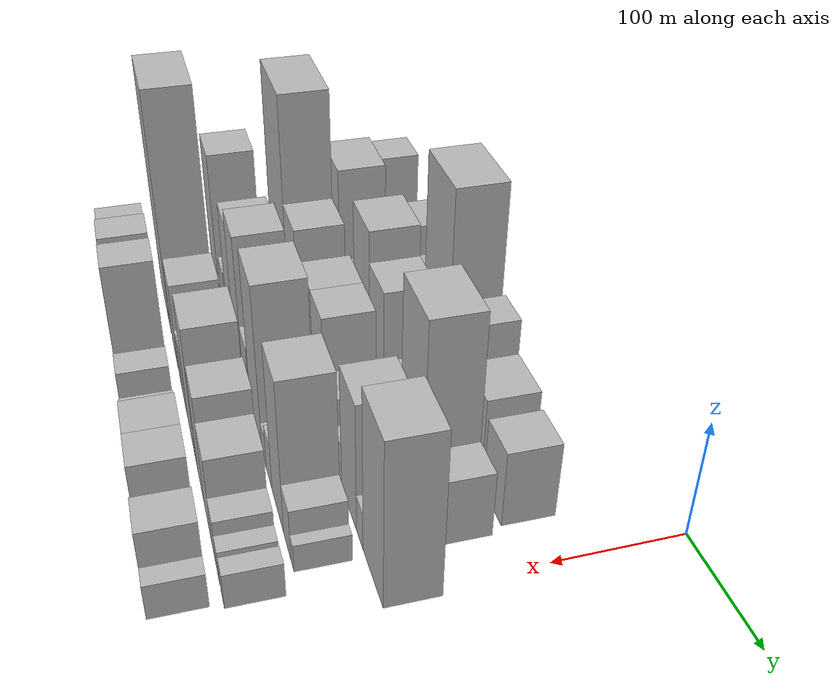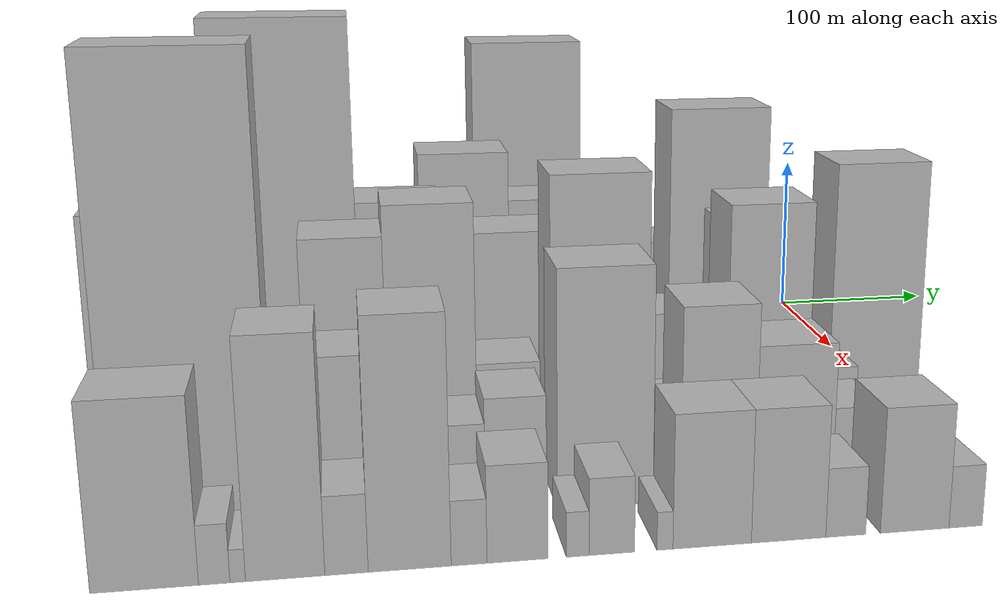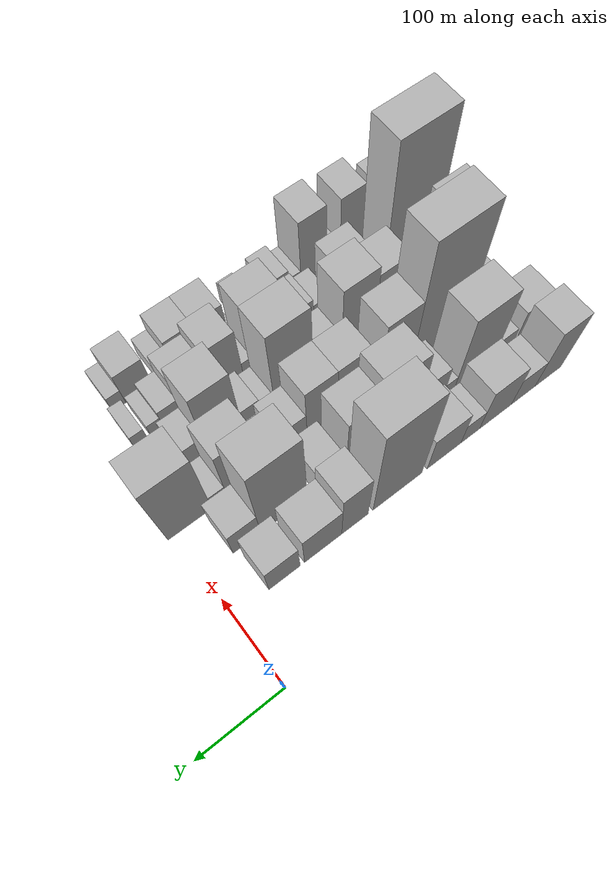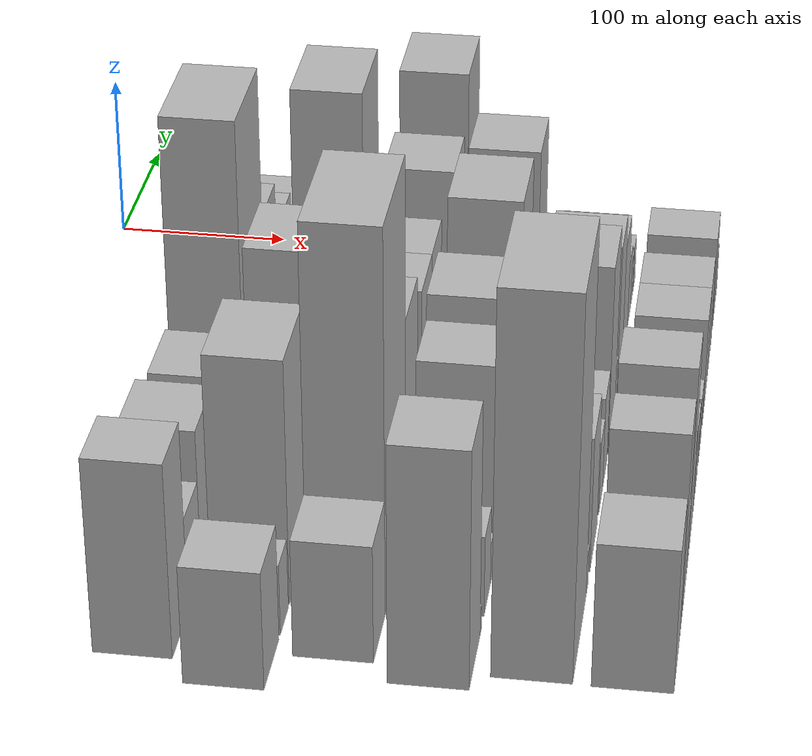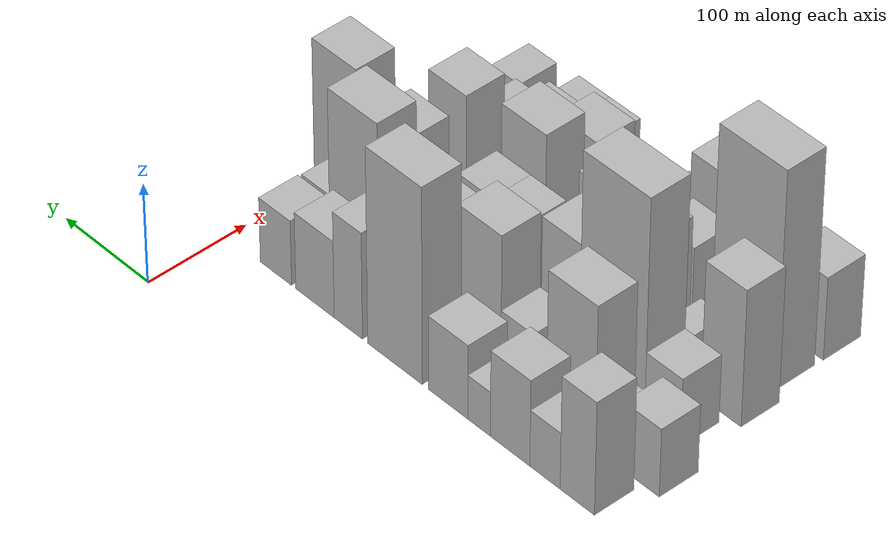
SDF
<sdf version="1.6">
 <world name="default">
  <model name="building_15">
   <static>1</static>
   <pose>100.0000 -401.0280 0 0.000000 0.000000 0.000000</pose>
   <link name="link">
    <pose>0 0 57.00 0 0 0</pose>
    <collision name="collision"><geometry><box><size>40.0000 37.3520 114.0000</size></box></geometry></collision>
    <visual name="visual">
     <cast_shadows>0</cast_shadows>
     <geometry><box><size>40.0000 37.3520 114.0000</size></box></geometry>
     <material>
      <script>
       <uri>model://HANNAS_wall/materials/scripts</uri>
       <uri>model://HANNAS_wall/materials/textures</uri>
       <name>vrc/HANNAS_wall</name>
      </script>
     </material>
    </visual>
   </link>
  </model>
  <model name="building_16">
   <static>1</static>
   <pose>100.0000 -365.7346 0 0.000000 0.000000 0.000000</pose>
   <link name="link">
    <pose>0 0 28.50 0 0 0</pose>
    <collision name="collision"><geometry><box><size>40.0000 33.2348 57.0000</size></box></geometry></collision>
    <visual name="visual">
     <cast_shadows>0</cast_shadows>
     <geometry><box><size>40.0000 33.2348 57.0000</size></box></geometry>
     <material>
      <script>
       <uri>model://HANNAS_wall/materials/scripts</uri>
       <uri>model://HANNAS_wall/materials/textures</uri>
       <name>vrc/HANNAS_wall</name>
      </script>
     </material>
    </visual>
   </link>
  </model>
  <model name="building_17">
   <static>1</static>
   <pose>100.0000 -327.2000 0 0.000000 0.000000 0.000000</pose>
   <link name="link">
    <pose>0 0 43.50 0 0 0</pose>
    <collision name="collision"><geometry><box><size>40.0000 43.8345 87.0000</size></box></geometry></collision>
    <visual name="visual">
     <cast_shadows>0</cast_shadows>
     <geometry><box><size>40.0000 43.8345 87.0000</size></box></geometry>
     <material>
      <script>
       <uri>model://HANNAS_wall/materials/scripts</uri>
       <uri>model://HANNAS_wall/materials/textures</uri>
       <name>vrc/HANNAS_wall</name>
      </script>
     </material>
    </visual>
   </link>
  </model>
  <model name="building_18">
   <static>1</static>
   <pose>100.0000 -292.6495 0 0.000000 0.000000 0.000000</pose>
   <link name="link">
    <pose>0 0 22.50 0 0 0</pose>
    <collision name="collision"><geometry><box><size>40.0000 25.2666 45.0000</size></box></geometry></collision>
    <visual name="visual">
     <cast_shadows>0</cast_shadows>
     <geometry><box><size>40.0000 25.2666 45.0000</size></box></geometry>
     <material>
      <script>
       <uri>model://HANNAS_wall/materials/scripts</uri>
       <uri>model://HANNAS_wall/materials/textures</uri>
       <name>vrc/HANNAS_wall</name>
      </script>
     </material>
    </visual>
   </link>
  </model>
  <model name="building_19">
   <static>1</static>
   <pose>100.0000 -257.8075 0 0.000000 0.000000 0.000000</pose>
   <link name="link">
    <pose>0 0 37.50 0 0 0</pose>
    <collision name="collision"><geometry><box><size>40.0000 44.4174 75.0000</size></box></geometry></collision>
    <visual name="visual">
     <cast_shadows>0</cast_shadows>
     <geometry><box><size>40.0000 44.4174 75.0000</size></box></geometry>
     <material>
      <script>
       <uri>model://HANNAS_wall/materials/scripts</uri>
       <uri>model://HANNAS_wall/materials/textures</uri>
       <name>vrc/HANNAS_wall</name>
      </script>
     </material>
    </visual>
   </link>
  </model>
  <model name="building_20">
   <static>1</static>
   <pose>100.0000 -197.3069 0 0.000000 0.000000 0.000000</pose>
   <link name="link">
    <pose>0 0 99.00 0 0 0</pose>
    <collision name="collision"><geometry><box><size>40.0000 62.5837 198.0000</size></box></geometry></collision>
    <visual name="visual">
     <cast_shadows>0</cast_shadows>
     <geometry><box><size>40.0000 62.5837 198.0000</size></box></geometry>
     <material>
      <script>
       <uri>model://HANNAS_wall/materials/scripts</uri>
       <uri>model://HANNAS_wall/materials/textures</uri>
       <name>vrc/HANNAS_wall</name>
      </script>
     </material>
    </visual>
   </link>
  </model>
  <model name="building_21">
   <static>1</static>
   <pose>100.0000 -143.6256 0 0.000000 0.000000 0.000000</pose>
   <link name="link">
    <pose>0 0 54.00 0 0 0</pose>
    <collision name="collision"><geometry><box><size>40.0000 32.7790 108.0000</size></box></geometry></collision>
    <visual name="visual">
     <cast_shadows>0</cast_shadows>
     <geometry><box><size>40.0000 32.7790 108.0000</size></box></geometry>
     <material>
      <script>
       <uri>model://HANNAS_wall/materials/scripts</uri>
       <uri>model://HANNAS_wall/materials/textures</uri>
       <name>vrc/HANNAS_wall</name>
      </script>
     </material>
    </visual>
   </link>
  </model>
  <model name="building_22">
   <static>1</static>
   <pose>100.0000 -104.7117 0 0.000000 0.000000 0.000000</pose>
   <link name="link">
    <pose>0 0 39.00 0 0 0</pose>
    <collision name="collision"><geometry><box><size>40.0000 45.0487 78.0000</size></box></geometry></collision>
    <visual name="visual">
     <cast_shadows>0</cast_shadows>
     <geometry><box><size>40.0000 45.0487 78.0000</size></box></geometry>
     <material>
      <script>
       <uri>model://HANNAS_wall/materials/scripts</uri>
       <uri>model://HANNAS_wall/materials/textures</uri>
       <name>vrc/HANNAS_wall</name>
      </script>
     </material>
    </visual>
   </link>
  </model>
  <model name="building_23">
   <static>1</static>
   <pose>100.0000 -58.7064 0 0.000000 0.000000 0.000000</pose>
   <link name="link">
    <pose>0 0 33.00 0 0 0</pose>
    <collision name="collision"><geometry><box><size>40.0000 36.9619 66.0000</size></box></geometry></collision>
    <visual name="visual">
     <cast_shadows>0</cast_shadows>
     <geometry><box><size>40.0000 36.9619 66.0000</size></box></geometry>
     <material>
      <script>
       <uri>model://HANNAS_wall/materials/scripts</uri>
       <uri>model://HANNAS_wall/materials/textures</uri>
       <name>vrc/HANNAS_wall</name>
      </script>
     </material>
    </visual>
   </link>
  </model>
  <model name="building_61">
   <static>1</static>
   <pose>149.0000 -417.6208 0 0.000000 0.000000 0.000000</pose>
   <link name="link">
    <pose>0 0 34.50 0 0 0</pose>
    <collision name="collision"><geometry><box><size>40.0000 40.3076 69.0000</size></box></geometry></collision>
    <visual name="visual">
     <cast_shadows>0</cast_shadows>
     <geometry><box><size>40.0000 40.3076 69.0000</size></box></geometry>
     <material>
      <script>
       <uri>model://HANNAS_wall/materials/scripts</uri>
       <uri>model://HANNAS_wall/materials/textures</uri>
       <name>vrc/HANNAS_wall</name>
      </script>
     </material>
    </visual>
   </link>
  </model>
  <model name="building_62">
   <static>1</static>
   <pose>149.0000 -382.2381 0 0.000000 0.000000 0.000000</pose>
   <link name="link">
    <pose>0 0 21.00 0 0 0</pose>
    <collision name="collision"><geometry><box><size>40.0000 22.4577 42.0000</size></box></geometry></collision>
    <visual name="visual">
     <cast_shadows>0</cast_shadows>
     <geometry><box><size>40.0000 22.4577 42.0000</size></box></geometry>
     <material>
      <script>
       <uri>model://HANNAS_wall/materials/scripts</uri>
       <uri>model://HANNAS_wall/materials/textures</uri>
       <name>vrc/HANNAS_wall</name>
      </script>
     </material>
    </visual>
   </link>
  </model>
  <model name="building_63">
   <static>1</static>
   <pose>149.0000 -341.0811 0 0.000000 0.000000 0.000000</pose>
   <link name="link">
    <pose>0 0 72.00 0 0 0</pose>
    <collision name="collision"><geometry><box><size>40.0000 53.8563 144.0000</size></box></geometry></collision>
    <visual name="visual">
     <cast_shadows>0</cast_shadows>
     <geometry><box><size>40.0000 53.8563 144.0000</size></box></geometry>
     <material>
      <script>
       <uri>model://HANNAS_wall/materials/scripts</uri>
       <uri>model://HANNAS_wall/materials/textures</uri>
       <name>vrc/HANNAS_wall</name>
      </script>
     </material>
    </visual>
   </link>
  </model>
  <model name="building_64">
   <static>1</static>
   <pose>149.0000 -306.5712 0 0.000000 0.000000 0.000000</pose>
   <link name="link">
    <pose>0 0 15.00 0 0 0</pose>
    <collision name="collision"><geometry><box><size>40.0000 15.1635 30.0000</size></box></geometry></collision>
    <visual name="visual">
     <cast_shadows>0</cast_shadows>
     <geometry><box><size>40.0000 15.1635 30.0000</size></box></geometry>
     <material>
      <script>
       <uri>model://HANNAS_wall/materials/scripts</uri>
       <uri>model://HANNAS_wall/materials/textures</uri>
       <name>vrc/HANNAS_wall</name>
      </script>
     </material>
    </visual>
   </link>
  </model>
  <model name="building_65">
   <static>1</static>
   <pose>149.0000 -281.0648 0 0.000000 0.000000 0.000000</pose>
   <link name="link">
    <pose>0 0 34.50 0 0 0</pose>
    <collision name="collision"><geometry><box><size>40.0000 35.8495 69.0000</size></box></geometry></collision>
    <visual name="visual">
     <cast_shadows>0</cast_shadows>
     <geometry><box><size>40.0000 35.8495 69.0000</size></box></geometry>
     <material>
      <script>
       <uri>model://HANNAS_wall/materials/scripts</uri>
       <uri>model://HANNAS_wall/materials/textures</uri>
       <name>vrc/HANNAS_wall</name>
      </script>
     </material>
    </visual>
   </link>
  </model>
  <model name="building_66">
   <static>1</static>
   <pose>149.0000 -238.6865 0 0.000000 0.000000 0.000000</pose>
   <link name="link">
    <pose>0 0 72.00 0 0 0</pose>
    <collision name="collision"><geometry><box><size>40.0000 48.9071 144.0000</size></box></geometry></collision>
    <visual name="visual">
     <cast_shadows>0</cast_shadows>
     <geometry><box><size>40.0000 48.9071 144.0000</size></box></geometry>
     <material>
      <script>
       <uri>model://HANNAS_wall/materials/scripts</uri>
       <uri>model://HANNAS_wall/materials/textures</uri>
       <name>vrc/HANNAS_wall</name>
      </script>
     </material>
    </visual>
   </link>
  </model>
  <model name="building_67">
   <static>1</static>
   <pose>149.0000 -192.8551 0 0.000000 0.000000 0.000000</pose>
   <link name="link">
    <pose>0 0 58.50 0 0 0</pose>
    <collision name="collision"><geometry><box><size>40.0000 42.7557 117.0000</size></box></geometry></collision>
    <visual name="visual">
     <cast_shadows>0</cast_shadows>
     <geometry><box><size>40.0000 42.7557 117.0000</size></box></geometry>
     <material>
      <script>
       <uri>model://HANNAS_wall/materials/scripts</uri>
       <uri>model://HANNAS_wall/materials/textures</uri>
       <name>vrc/HANNAS_wall</name>
      </script>
     </material>
    </visual>
   </link>
  </model>
  <model name="building_68">
   <static>1</static>
   <pose>149.0000 -149.8203 0 0.000000 0.000000 0.000000</pose>
   <link name="link">
    <pose>0 0 30.00 0 0 0</pose>
    <collision name="collision"><geometry><box><size>40.0000 33.3138 60.0000</size></box></geometry></collision>
    <visual name="visual">
     <cast_shadows>0</cast_shadows>
     <geometry><box><size>40.0000 33.3138 60.0000</size></box></geometry>
     <material>
      <script>
       <uri>model://HANNAS_wall/materials/scripts</uri>
       <uri>model://HANNAS_wall/materials/textures</uri>
       <name>vrc/HANNAS_wall</name>
      </script>
     </material>
    </visual>
   </link>
  </model>
  <model name="building_69">
   <static>1</static>
   <pose>149.0000 -94.7857 0 0.000000 0.000000 0.000000</pose>
   <link name="link">
    <pose>0 0 82.50 0 0 0</pose>
    <collision name="collision"><geometry><box><size>40.0000 56.7555 165.0000</size></box></geometry></collision>
    <visual name="visual">
     <cast_shadows>0</cast_shadows>
     <geometry><box><size>40.0000 56.7555 165.0000</size></box></geometry>
     <material>
      <script>
       <uri>model://HANNAS_wall/materials/scripts</uri>
       <uri>model://HANNAS_wall/materials/textures</uri>
       <name>vrc/HANNAS_wall</name>
      </script>
     </material>
    </visual>
   </link>
  </model>
  <model name="building_70">
   <static>1</static>
   <pose>149.0000 -50.0288 0 0.000000 0.000000 0.000000</pose>
   <link name="link">
    <pose>0 0 28.50 0 0 0</pose>
    <collision name="collision"><geometry><box><size>40.0000 32.7581 57.0000</size></box></geometry></collision>
    <visual name="visual">
     <cast_shadows>0</cast_shadows>
     <geometry><box><size>40.0000 32.7581 57.0000</size></box></geometry>
     <material>
      <script>
       <uri>model://HANNAS_wall/materials/scripts</uri>
       <uri>model://HANNAS_wall/materials/textures</uri>
       <name>vrc/HANNAS_wall</name>
      </script>
     </material>
    </visual>
   </link>
  </model>
  <model name="building_108">
   <static>1</static>
   <pose>198.0000 -389.7115 0 0.000000 0.000000 0.000000</pose>
   <link name="link">
    <pose>0 0 34.50 0 0 0</pose>
    <collision name="collision"><geometry><box><size>40.0000 39.2345 69.0000</size></box></geometry></collision>
    <visual name="visual">
     <cast_shadows>0</cast_shadows>
     <geometry><box><size>40.0000 39.2345 69.0000</size></box></geometry>
     <material>
      <script>
       <uri>model://HANNAS_wall/materials/scripts</uri>
       <uri>model://HANNAS_wall/materials/textures</uri>
       <name>vrc/HANNAS_wall</name>
      </script>
     </material>
    </visual>
   </link>
  </model>
  <model name="building_109">
   <static>1</static>
   <pose>198.0000 -333.9426 0 0.000000 0.000000 0.000000</pose>
   <link name="link">
    <pose>0 0 111.00 0 0 0</pose>
    <collision name="collision"><geometry><box><size>40.0000 72.3033 222.0000</size></box></geometry></collision>
    <visual name="visual">
     <cast_shadows>0</cast_shadows>
     <geometry><box><size>40.0000 72.3033 222.0000</size></box></geometry>
     <material>
      <script>
       <uri>model://HANNAS_wall/materials/scripts</uri>
       <uri>model://HANNAS_wall/materials/textures</uri>
       <name>vrc/HANNAS_wall</name>
      </script>
     </material>
    </visual>
   </link>
  </model>
  <model name="building_110">
   <static>1</static>
   <pose>198.0000 -276.2943 0 0.000000 0.000000 0.000000</pose>
   <link name="link">
    <pose>0 0 64.50 0 0 0</pose>
    <collision name="collision"><geometry><box><size>40.0000 42.9933 129.0000</size></box></geometry></collision>
    <visual name="visual">
     <cast_shadows>0</cast_shadows>
     <geometry><box><size>40.0000 42.9933 129.0000</size></box></geometry>
     <material>
      <script>
       <uri>model://HANNAS_wall/materials/scripts</uri>
       <uri>model://HANNAS_wall/materials/textures</uri>
       <name>vrc/HANNAS_wall</name>
      </script>
     </material>
    </visual>
   </link>
  </model>
  <model name="building_111">
   <static>1</static>
   <pose>198.0000 -241.5619 0 0.000000 0.000000 0.000000</pose>
   <link name="link">
    <pose>0 0 7.50 0 0 0</pose>
    <collision name="collision"><geometry><box><size>40.0000 6.4716 15.0000</size></box></geometry></collision>
    <visual name="visual">
     <cast_shadows>0</cast_shadows>
     <geometry><box><size>40.0000 6.4716 15.0000</size></box></geometry>
     <material>
      <script>
       <uri>model://HANNAS_wall/materials/scripts</uri>
       <uri>model://HANNAS_wall/materials/textures</uri>
       <name>vrc/HANNAS_wall</name>
      </script>
     </material>
    </visual>
   </link>
  </model>
  <model name="building_112">
   <static>1</static>
   <pose>198.0000 -218.4153 0 0.000000 0.000000 0.000000</pose>
   <link name="link">
    <pose>0 0 55.50 0 0 0</pose>
    <collision name="collision"><geometry><box><size>40.0000 39.8216 111.0000</size></box></geometry></collision>
    <visual name="visual">
     <cast_shadows>0</cast_shadows>
     <geometry><box><size>40.0000 39.8216 111.0000</size></box></geometry>
     <material>
      <script>
       <uri>model://HANNAS_wall/materials/scripts</uri>
       <uri>model://HANNAS_wall/materials/textures</uri>
       <name>vrc/HANNAS_wall</name>
      </script>
     </material>
    </visual>
   </link>
  </model>
  <model name="building_113">
   <static>1</static>
   <pose>198.0000 -179.4373 0 0.000000 0.000000 0.000000</pose>
   <link name="link">
    <pose>0 0 55.50 0 0 0</pose>
    <collision name="collision"><geometry><box><size>40.0000 38.1344 111.0000</size></box></geometry></collision>
    <visual name="visual">
     <cast_shadows>0</cast_shadows>
     <geometry><box><size>40.0000 38.1344 111.0000</size></box></geometry>
     <material>
      <script>
       <uri>model://HANNAS_wall/materials/scripts</uri>
       <uri>model://HANNAS_wall/materials/textures</uri>
       <name>vrc/HANNAS_wall</name>
      </script>
     </material>
    </visual>
   </link>
  </model>
  <model name="building_114">
   <static>1</static>
   <pose>198.0000 -144.1274 0 0.000000 0.000000 0.000000</pose>
   <link name="link">
    <pose>0 0 31.50 0 0 0</pose>
    <collision name="collision"><geometry><box><size>40.0000 32.4854 63.0000</size></box></geometry></collision>
    <visual name="visual">
     <cast_shadows>0</cast_shadows>
     <geometry><box><size>40.0000 32.4854 63.0000</size></box></geometry>
     <material>
      <script>
       <uri>model://HANNAS_wall/materials/scripts</uri>
       <uri>model://HANNAS_wall/materials/textures</uri>
       <name>vrc/HANNAS_wall</name>
      </script>
     </material>
    </visual>
   </link>
  </model>
  <model name="building_115">
   <static>1</static>
   <pose>198.0000 -116.7736 0 0.000000 0.000000 0.000000</pose>
   <link name="link">
    <pose>0 0 19.50 0 0 0</pose>
    <collision name="collision"><geometry><box><size>40.0000 22.2222 39.0000</size></box></geometry></collision>
    <visual name="visual">
     <cast_shadows>0</cast_shadows>
     <geometry><box><size>40.0000 22.2222 39.0000</size></box></geometry>
     <material>
      <script>
       <uri>model://HANNAS_wall/materials/scripts</uri>
       <uri>model://HANNAS_wall/materials/textures</uri>
       <name>vrc/HANNAS_wall</name>
      </script>
     </material>
    </visual>
   </link>
  </model>
  <model name="building_116">
   <static>1</static>
   <pose>198.0000 -83.6625 0 0.000000 0.000000 0.000000</pose>
   <link name="link">
    <pose>0 0 55.50 0 0 0</pose>
    <collision name="collision"><geometry><box><size>40.0000 44.0001 111.0000</size></box></geometry></collision>
    <visual name="visual">
     <cast_shadows>0</cast_shadows>
     <geometry><box><size>40.0000 44.0001 111.0000</size></box></geometry>
     <material>
      <script>
       <uri>model://HANNAS_wall/materials/scripts</uri>
       <uri>model://HANNAS_wall/materials/textures</uri>
       <name>vrc/HANNAS_wall</name>
      </script>
     </material>
    </visual>
   </link>
  </model>
  <model name="building_117">
   <static>1</static>
   <pose>198.0000 -52.4876 0 0.000000 0.000000 0.000000</pose>
   <link name="link">
    <pose>0 0 16.50 0 0 0</pose>
    <collision name="collision"><geometry><box><size>40.0000 18.3497 33.0000</size></box></geometry></collision>
    <visual name="visual">
     <cast_shadows>0</cast_shadows>
     <geometry><box><size>40.0000 18.3497 33.0000</size></box></geometry>
     <material>
      <script>
       <uri>model://HANNAS_wall/materials/scripts</uri>
       <uri>model://HANNAS_wall/materials/textures</uri>
       <name>vrc/HANNAS_wall</name>
      </script>
     </material>
    </visual>
   </link>
  </model>
  <model name="building_118">
   <static>1</static>
   <pose>198.0000 -17.4061 0 0.000000 0.000000 0.000000</pose>
   <link name="link">
    <pose>0 0 70.50 0 0 0</pose>
    <collision name="collision"><geometry><box><size>40.0000 51.8133 141.0000</size></box></geometry></collision>
    <visual name="visual">
     <cast_shadows>0</cast_shadows>
     <geometry><box><size>40.0000 51.8133 141.0000</size></box></geometry>
     <material>
      <script>
       <uri>model://HANNAS_wall/materials/scripts</uri>
       <uri>model://HANNAS_wall/materials/textures</uri>
       <name>vrc/HANNAS_wall</name>
      </script>
     </material>
    </visual>
   </link>
  </model>
  <model name="building_153">
   <static>1</static>
   <pose>247.0000 -402.2108 0 0.000000 0.000000 0.000000</pose>
   <link name="link">
    <pose>0 0 69.00 0 0 0</pose>
    <collision name="collision"><geometry><box><size>40.0000 43.5881 138.0000</size></box></geometry></collision>
    <visual name="visual">
     <cast_shadows>0</cast_shadows>
     <geometry><box><size>40.0000 43.5881 138.0000</size></box></geometry>
     <material>
      <script>
       <uri>model://HANNAS_wall/materials/scripts</uri>
       <uri>model://HANNAS_wall/materials/textures</uri>
       <name>vrc/HANNAS_wall</name>
      </script>
     </material>
    </visual>
   </link>
  </model>
  <model name="building_154">
   <static>1</static>
   <pose>247.0000 -377.2180 0 0.000000 0.000000 0.000000</pose>
   <link name="link">
    <pose>0 0 7.50 0 0 0</pose>
    <collision name="collision"><geometry><box><size>40.0000 6.3976 15.0000</size></box></geometry></collision>
    <visual name="visual">
     <cast_shadows>0</cast_shadows>
     <geometry><box><size>40.0000 6.3976 15.0000</size></box></geometry>
     <material>
      <script>
       <uri>model://HANNAS_wall/materials/scripts</uri>
       <uri>model://HANNAS_wall/materials/textures</uri>
       <name>vrc/HANNAS_wall</name>
      </script>
     </material>
    </visual>
   </link>
  </model>
  <model name="building_155">
   <static>1</static>
   <pose>247.0000 -350.5847 0 0.000000 0.000000 0.000000</pose>
   <link name="link">
    <pose>0 0 24.00 0 0 0</pose>
    <collision name="collision"><geometry><box><size>40.0000 26.8688 48.0000</size></box></geometry></collision>
    <visual name="visual">
     <cast_shadows>0</cast_shadows>
     <geometry><box><size>40.0000 26.8688 48.0000</size></box></geometry>
     <material>
      <script>
       <uri>model://HANNAS_wall/materials/scripts</uri>
       <uri>model://HANNAS_wall/materials/textures</uri>
       <name>vrc/HANNAS_wall</name>
      </script>
     </material>
    </visual>
   </link>
  </model>
  <model name="building_156">
   <static>1</static>
   <pose>247.0000 -331.2858 0 0.000000 0.000000 0.000000</pose>
   <link name="link">
    <pose>0 0 12.00 0 0 0</pose>
    <collision name="collision"><geometry><box><size>40.0000 11.7291 24.0000</size></box></geometry></collision>
    <visual name="visual">
     <cast_shadows>0</cast_shadows>
     <geometry><box><size>40.0000 11.7291 24.0000</size></box></geometry>
     <material>
      <script>
       <uri>model://HANNAS_wall/materials/scripts</uri>
       <uri>model://HANNAS_wall/materials/textures</uri>
       <name>vrc/HANNAS_wall</name>
      </script>
     </material>
    </visual>
   </link>
  </model>
  <model name="building_157">
   <static>1</static>
   <pose>247.0000 -305.7315 0 0.000000 0.000000 0.000000</pose>
   <link name="link">
    <pose>0 0 61.50 0 0 0</pose>
    <collision name="collision"><geometry><box><size>40.0000 39.3795 123.0000</size></box></geometry></collision>
    <visual name="visual">
     <cast_shadows>0</cast_shadows>
     <geometry><box><size>40.0000 39.3795 123.0000</size></box></geometry>
     <material>
      <script>
       <uri>model://HANNAS_wall/materials/scripts</uri>
       <uri>model://HANNAS_wall/materials/textures</uri>
       <name>vrc/HANNAS_wall</name>
      </script>
     </material>
    </visual>
   </link>
  </model>
  <model name="building_158">
   <static>1</static>
   <pose>247.0000 -264.2725 0 0.000000 0.000000 0.000000</pose>
   <link name="link">
    <pose>0 0 69.00 0 0 0</pose>
    <collision name="collision"><geometry><box><size>40.0000 43.5385 138.0000</size></box></geometry></collision>
    <visual name="visual">
     <cast_shadows>0</cast_shadows>
     <geometry><box><size>40.0000 43.5385 138.0000</size></box></geometry>
     <material>
      <script>
       <uri>model://HANNAS_wall/materials/scripts</uri>
       <uri>model://HANNAS_wall/materials/textures</uri>
       <name>vrc/HANNAS_wall</name>
      </script>
     </material>
    </visual>
   </link>
  </model>
  <model name="building_159">
   <static>1</static>
   <pose>247.0000 -226.6623 0 0.000000 0.000000 0.000000</pose>
   <link name="link">
    <pose>0 0 28.50 0 0 0</pose>
    <collision name="collision"><geometry><box><size>40.0000 31.6820 57.0000</size></box></geometry></collision>
    <visual name="visual">
     <cast_shadows>0</cast_shadows>
     <geometry><box><size>40.0000 31.6820 57.0000</size></box></geometry>
     <material>
      <script>
       <uri>model://HANNAS_wall/materials/scripts</uri>
       <uri>model://HANNAS_wall/materials/textures</uri>
       <name>vrc/HANNAS_wall</name>
      </script>
     </material>
    </visual>
   </link>
  </model>
  <model name="building_160">
   <static>1</static>
   <pose>247.0000 -180.8012 0 0.000000 0.000000 0.000000</pose>
   <link name="link">
    <pose>0 0 75.00 0 0 0</pose>
    <collision name="collision"><geometry><box><size>40.0000 50.0404 150.0000</size></box></geometry></collision>
    <visual name="visual">
     <cast_shadows>0</cast_shadows>
     <geometry><box><size>40.0000 50.0404 150.0000</size></box></geometry>
     <material>
      <script>
       <uri>model://HANNAS_wall/materials/scripts</uri>
       <uri>model://HANNAS_wall/materials/textures</uri>
       <name>vrc/HANNAS_wall</name>
      </script>
     </material>
    </visual>
   </link>
  </model>
  <model name="building_161">
   <static>1</static>
   <pose>247.0000 -147.1944 0 0.000000 0.000000 0.000000</pose>
   <link name="link">
    <pose>0 0 15.00 0 0 0</pose>
    <collision name="collision"><geometry><box><size>40.0000 17.1731 30.0000</size></box></geometry></collision>
    <visual name="visual">
     <cast_shadows>0</cast_shadows>
     <geometry><box><size>40.0000 17.1731 30.0000</size></box></geometry>
     <material>
      <script>
       <uri>model://HANNAS_wall/materials/scripts</uri>
       <uri>model://HANNAS_wall/materials/textures</uri>
       <name>vrc/HANNAS_wall</name>
      </script>
     </material>
    </visual>
   </link>
  </model>
  <model name="building_162">
   <static>1</static>
   <pose>247.0000 -127.0095 0 0.000000 0.000000 0.000000</pose>
   <link name="link">
    <pose>0 0 21.00 0 0 0</pose>
    <collision name="collision"><geometry><box><size>40.0000 23.1966 42.0000</size></box></geometry></collision>
    <visual name="visual">
     <cast_shadows>0</cast_shadows>
     <geometry><box><size>40.0000 23.1966 42.0000</size></box></geometry>
     <material>
      <script>
       <uri>model://HANNAS_wall/materials/scripts</uri>
       <uri>model://HANNAS_wall/materials/textures</uri>
       <name>vrc/HANNAS_wall</name>
      </script>
     </material>
    </visual>
   </link>
  </model>
  <model name="building_163">
   <static>1</static>
   <pose>247.0000 -93.7710 0 0.000000 0.000000 0.000000</pose>
   <link name="link">
    <pose>0 0 66.00 0 0 0</pose>
    <collision name="collision"><geometry><box><size>40.0000 43.2805 132.0000</size></box></geometry></collision>
    <visual name="visual">
     <cast_shadows>0</cast_shadows>
     <geometry><box><size>40.0000 43.2805 132.0000</size></box></geometry>
     <material>
      <script>
       <uri>model://HANNAS_wall/materials/scripts</uri>
       <uri>model://HANNAS_wall/materials/textures</uri>
       <name>vrc/HANNAS_wall</name>
      </script>
     </material>
    </visual>
   </link>
  </model>
  <model name="building_164">
   <static>1</static>
   <pose>247.0000 -59.1571 0 0.000000 0.000000 0.000000</pose>
   <link name="link">
    <pose>0 0 22.50 0 0 0</pose>
    <collision name="collision"><geometry><box><size>40.0000 25.9474 45.0000</size></box></geometry></collision>
    <visual name="visual">
     <cast_shadows>0</cast_shadows>
     <geometry><box><size>40.0000 25.9474 45.0000</size></box></geometry>
     <material>
      <script>
       <uri>model://HANNAS_wall/materials/scripts</uri>
       <uri>model://HANNAS_wall/materials/textures</uri>
       <name>vrc/HANNAS_wall</name>
      </script>
     </material>
    </visual>
   </link>
  </model>
  <model name="building_165">
   <static>1</static>
   <pose>247.0000 -41.0581 0 0.000000 0.000000 0.000000</pose>
   <link name="link">
    <pose>0 0 12.00 0 0 0</pose>
    <collision name="collision"><geometry><box><size>40.0000 10.2505 24.0000</size></box></geometry></collision>
    <visual name="visual">
     <cast_shadows>0</cast_shadows>
     <geometry><box><size>40.0000 10.2505 24.0000</size></box></geometry>
     <material>
      <script>
       <uri>model://HANNAS_wall/materials/scripts</uri>
       <uri>model://HANNAS_wall/materials/textures</uri>
       <name>vrc/HANNAS_wall</name>
      </script>
     </material>
    </visual>
   </link>
  </model>
  <model name="building_199">
   <static>1</static>
   <pose>296.0000 -376.3664 0 0.000000 0.000000 0.000000</pose>
   <link name="link">
    <pose>0 0 109.50 0 0 0</pose>
    <collision name="collision"><geometry><box><size>40.0000 71.8689 219.0000</size></box></geometry></collision>
    <visual name="visual">
     <cast_shadows>0</cast_shadows>
     <geometry><box><size>40.0000 71.8689 219.0000</size></box></geometry>
     <material>
      <script>
       <uri>model://HANNAS_wall/materials/scripts</uri>
       <uri>model://HANNAS_wall/materials/textures</uri>
       <name>vrc/HANNAS_wall</name>
      </script>
     </material>
    </visual>
   </link>
  </model>
  <model name="building_200">
   <static>1</static>
   <pose>296.0000 -334.6474 0 0.000000 0.000000 0.000000</pose>
   <link name="link">
    <pose>0 0 12.00 0 0 0</pose>
    <collision name="collision"><geometry><box><size>40.0000 11.5691 24.0000</size></box></geometry></collision>
    <visual name="visual">
     <cast_shadows>0</cast_shadows>
     <geometry><box><size>40.0000 11.5691 24.0000</size></box></geometry>
     <material>
      <script>
       <uri>model://HANNAS_wall/materials/scripts</uri>
       <uri>model://HANNAS_wall/materials/textures</uri>
       <name>vrc/HANNAS_wall</name>
      </script>
     </material>
    </visual>
   </link>
  </model>
  <model name="building_201">
   <static>1</static>
   <pose>296.0000 -297.7083 0 0.000000 0.000000 0.000000</pose>
   <link name="link">
    <pose>0 0 40.50 0 0 0</pose>
    <collision name="collision"><geometry><box><size>40.0000 42.3090 81.0000</size></box></geometry></collision>
    <visual name="visual">
     <cast_shadows>0</cast_shadows>
     <geometry><box><size>40.0000 42.3090 81.0000</size></box></geometry>
     <material>
      <script>
       <uri>model://HANNAS_wall/materials/scripts</uri>
       <uri>model://HANNAS_wall/materials/textures</uri>
       <name>vrc/HANNAS_wall</name>
      </script>
     </material>
    </visual>
   </link>
  </model>
  <model name="building_202">
   <static>1</static>
   <pose>296.0000 -255.6815 0 0.000000 0.000000 0.000000</pose>
   <link name="link">
    <pose>0 0 22.50 0 0 0</pose>
    <collision name="collision"><geometry><box><size>40.0000 23.7448 45.0000</size></box></geometry></collision>
    <visual name="visual">
     <cast_shadows>0</cast_shadows>
     <geometry><box><size>40.0000 23.7448 45.0000</size></box></geometry>
     <material>
      <script>
       <uri>model://HANNAS_wall/materials/scripts</uri>
       <uri>model://HANNAS_wall/materials/textures</uri>
       <name>vrc/HANNAS_wall</name>
      </script>
     </material>
    </visual>
   </link>
  </model>
  <model name="building_203">
   <static>1</static>
   <pose>296.0000 -229.4340 0 0.000000 0.000000 0.000000</pose>
   <link name="link">
    <pose>0 0 28.50 0 0 0</pose>
    <collision name="collision"><geometry><box><size>40.0000 28.7501 57.0000</size></box></geometry></collision>
    <visual name="visual">
     <cast_shadows>0</cast_shadows>
     <geometry><box><size>40.0000 28.7501 57.0000</size></box></geometry>
     <material>
      <script>
       <uri>model://HANNAS_wall/materials/scripts</uri>
       <uri>model://HANNAS_wall/materials/textures</uri>
       <name>vrc/HANNAS_wall</name>
      </script>
     </material>
    </visual>
   </link>
  </model>
  <model name="building_204">
   <static>1</static>
   <pose>296.0000 -187.1168 0 0.000000 0.000000 0.000000</pose>
   <link name="link">
    <pose>0 0 58.50 0 0 0</pose>
    <collision name="collision"><geometry><box><size>40.0000 45.8844 117.0000</size></box></geometry></collision>
    <visual name="visual">
     <cast_shadows>0</cast_shadows>
     <geometry><box><size>40.0000 45.8844 117.0000</size></box></geometry>
     <material>
      <script>
       <uri>model://HANNAS_wall/materials/scripts</uri>
       <uri>model://HANNAS_wall/materials/textures</uri>
       <name>vrc/HANNAS_wall</name>
      </script>
     </material>
    </visual>
   </link>
  </model>
  <model name="building_205">
   <static>1</static>
   <pose>296.0000 -157.5001 0 0.000000 0.000000 0.000000</pose>
   <link name="link">
    <pose>0 0 13.50 0 0 0</pose>
    <collision name="collision"><geometry><box><size>40.0000 13.3490 27.0000</size></box></geometry></collision>
    <visual name="visual">
     <cast_shadows>0</cast_shadows>
     <geometry><box><size>40.0000 13.3490 27.0000</size></box></geometry>
     <material>
      <script>
       <uri>model://HANNAS_wall/materials/scripts</uri>
       <uri>model://HANNAS_wall/materials/textures</uri>
       <name>vrc/HANNAS_wall</name>
      </script>
     </material>
    </visual>
   </link>
  </model>
  <model name="building_206">
   <static>1</static>
   <pose>296.0000 -132.3922 0 0.000000 0.000000 0.000000</pose>
   <link name="link">
    <pose>0 0 48.00 0 0 0</pose>
    <collision name="collision"><geometry><box><size>40.0000 36.8669 96.0000</size></box></geometry></collision>
    <visual name="visual">
     <cast_shadows>0</cast_shadows>
     <geometry><box><size>40.0000 36.8669 96.0000</size></box></geometry>
     <material>
      <script>
       <uri>model://HANNAS_wall/materials/scripts</uri>
       <uri>model://HANNAS_wall/materials/textures</uri>
       <name>vrc/HANNAS_wall</name>
      </script>
     </material>
    </visual>
   </link>
  </model>
  <model name="building_207">
   <static>1</static>
   <pose>296.0000 -94.6415 0 0.000000 0.000000 0.000000</pose>
   <link name="link">
    <pose>0 0 37.50 0 0 0</pose>
    <collision name="collision"><geometry><box><size>40.0000 38.6345 75.0000</size></box></geometry></collision>
    <visual name="visual">
     <cast_shadows>0</cast_shadows>
     <geometry><box><size>40.0000 38.6345 75.0000</size></box></geometry>
     <material>
      <script>
       <uri>model://HANNAS_wall/materials/scripts</uri>
       <uri>model://HANNAS_wall/materials/textures</uri>
       <name>vrc/HANNAS_wall</name>
      </script>
     </material>
    </visual>
   </link>
  </model>
  <model name="building_208">
   <static>1</static>
   <pose>296.0000 -63.8032 0 0.000000 0.000000 0.000000</pose>
   <link name="link">
    <pose>0 0 21.00 0 0 0</pose>
    <collision name="collision"><geometry><box><size>40.0000 23.0421 42.0000</size></box></geometry></collision>
    <visual name="visual">
     <cast_shadows>0</cast_shadows>
     <geometry><box><size>40.0000 23.0421 42.0000</size></box></geometry>
     <material>
      <script>
       <uri>model://HANNAS_wall/materials/scripts</uri>
       <uri>model://HANNAS_wall/materials/textures</uri>
       <name>vrc/HANNAS_wall</name>
      </script>
     </material>
    </visual>
   </link>
  </model>
  <model name="building_209">
   <static>1</static>
   <pose>296.0000 -44.7045 0 0.000000 0.000000 0.000000</pose>
   <link name="link">
    <pose>0 0 15.00 0 0 0</pose>
    <collision name="collision"><geometry><box><size>40.0000 15.1554 30.0000</size></box></geometry></collision>
    <visual name="visual">
     <cast_shadows>0</cast_shadows>
     <geometry><box><size>40.0000 15.1554 30.0000</size></box></geometry>
     <material>
      <script>
       <uri>model://HANNAS_wall/materials/scripts</uri>
       <uri>model://HANNAS_wall/materials/textures</uri>
       <name>vrc/HANNAS_wall</name>
      </script>
     </material>
    </visual>
   </link>
  </model>
  <model name="building_210">
   <static>1</static>
   <pose>296.0000 -25.1783 0 0.000000 0.000000 0.000000</pose>
   <link name="link">
    <pose>0 0 15.00 0 0 0</pose>
    <collision name="collision"><geometry><box><size>40.0000 15.8970 30.0000</size></box></geometry></collision>
    <visual name="visual">
     <cast_shadows>0</cast_shadows>
     <geometry><box><size>40.0000 15.8970 30.0000</size></box></geometry>
     <material>
      <script>
       <uri>model://HANNAS_wall/materials/scripts</uri>
       <uri>model://HANNAS_wall/materials/textures</uri>
       <name>vrc/HANNAS_wall</name>
      </script>
     </material>
    </visual>
   </link>
  </model>
  <model name="building_248">
   <static>1</static>
   <pose>345.0000 -391.0158 0 0.000000 0.000000 0.000000</pose>
   <link name="link">
    <pose>0 0 42.00 0 0 0</pose>
    <collision name="collision"><geometry><box><size>40.0000 43.6427 84.0000</size></box></geometry></collision>
    <visual name="visual">
     <cast_shadows>0</cast_shadows>
     <geometry><box><size>40.0000 43.6427 84.0000</size></box></geometry>
     <material>
      <script>
       <uri>model://HANNAS_wall/materials/scripts</uri>
       <uri>model://HANNAS_wall/materials/textures</uri>
       <name>vrc/HANNAS_wall</name>
      </script>
     </material>
    </visual>
   </link>
  </model>
  <model name="building_249">
   <static>1</static>
   <pose>345.0000 -362.7882 0 0.000000 0.000000 0.000000</pose>
   <link name="link">
    <pose>0 0 13.50 0 0 0</pose>
    <collision name="collision"><geometry><box><size>40.0000 12.8127 27.0000</size></box></geometry></collision>
    <visual name="visual">
     <cast_shadows>0</cast_shadows>
     <geometry><box><size>40.0000 12.8127 27.0000</size></box></geometry>
     <material>
      <script>
       <uri>model://HANNAS_wall/materials/scripts</uri>
       <uri>model://HANNAS_wall/materials/textures</uri>
       <name>vrc/HANNAS_wall</name>
      </script>
     </material>
    </visual>
   </link>
  </model>
  <model name="building_250">
   <static>1</static>
   <pose>345.0000 -353.2225 0 0.000000 0.000000 0.000000</pose>
   <link name="link">
    <pose>0 0 7.50 0 0 0</pose>
    <collision name="collision"><geometry><box><size>40.0000 6.3186 15.0000</size></box></geometry></collision>
    <visual name="visual">
     <cast_shadows>0</cast_shadows>
     <geometry><box><size>40.0000 6.3186 15.0000</size></box></geometry>
     <material>
      <script>
       <uri>model://HANNAS_wall/materials/scripts</uri>
       <uri>model://HANNAS_wall/materials/textures</uri>
       <name>vrc/HANNAS_wall</name>
      </script>
     </material>
    </visual>
   </link>
  </model>
  <model name="building_251">
   <static>1</static>
   <pose>345.0000 -333.6381 0 0.000000 0.000000 0.000000</pose>
   <link name="link">
    <pose>0 0 54.00 0 0 0</pose>
    <collision name="collision"><geometry><box><size>40.0000 32.8501 108.0000</size></box></geometry></collision>
    <visual name="visual">
     <cast_shadows>0</cast_shadows>
     <geometry><box><size>40.0000 32.8501 108.0000</size></box></geometry>
     <material>
      <script>
       <uri>model://HANNAS_wall/materials/scripts</uri>
       <uri>model://HANNAS_wall/materials/textures</uri>
       <name>vrc/HANNAS_wall</name>
      </script>
     </material>
    </visual>
   </link>
  </model>
  <model name="building_252">
   <static>1</static>
   <pose>345.0000 -308.1255 0 0.000000 0.000000 0.000000</pose>
   <link name="link">
    <pose>0 0 18.00 0 0 0</pose>
    <collision name="collision"><geometry><box><size>40.0000 18.1753 36.0000</size></box></geometry></collision>
    <visual name="visual">
     <cast_shadows>0</cast_shadows>
     <geometry><box><size>40.0000 18.1753 36.0000</size></box></geometry>
     <material>
      <script>
       <uri>model://HANNAS_wall/materials/scripts</uri>
       <uri>model://HANNAS_wall/materials/textures</uri>
       <name>vrc/HANNAS_wall</name>
      </script>
     </material>
    </visual>
   </link>
  </model>
  <model name="building_253">
   <static>1</static>
   <pose>345.0000 -281.3732 0 0.000000 0.000000 0.000000</pose>
   <link name="link">
    <pose>0 0 57.00 0 0 0</pose>
    <collision name="collision"><geometry><box><size>40.0000 35.3292 114.0000</size></box></geometry></collision>
    <visual name="visual">
     <cast_shadows>0</cast_shadows>
     <geometry><box><size>40.0000 35.3292 114.0000</size></box></geometry>
     <material>
      <script>
       <uri>model://HANNAS_wall/materials/scripts</uri>
       <uri>model://HANNAS_wall/materials/textures</uri>
       <name>vrc/HANNAS_wall</name>
      </script>
     </material>
    </visual>
   </link>
  </model>
  <model name="building_254">
   <static>1</static>
   <pose>345.0000 -255.9718 0 0.000000 0.000000 0.000000</pose>
   <link name="link">
    <pose>0 0 15.00 0 0 0</pose>
    <collision name="collision"><geometry><box><size>40.0000 15.4737 30.0000</size></box></geometry></collision>
    <visual name="visual">
     <cast_shadows>0</cast_shadows>
     <geometry><box><size>40.0000 15.4737 30.0000</size></box></geometry>
     <material>
      <script>
       <uri>model://HANNAS_wall/materials/scripts</uri>
       <uri>model://HANNAS_wall/materials/textures</uri>
       <name>vrc/HANNAS_wall</name>
      </script>
     </material>
    </visual>
   </link>
  </model>
  <model name="building_255">
   <static>1</static>
   <pose>345.0000 -234.9236 0 0.000000 0.000000 0.000000</pose>
   <link name="link">
    <pose>0 0 22.50 0 0 0</pose>
    <collision name="collision"><geometry><box><size>40.0000 26.6226 45.0000</size></box></geometry></collision>
    <visual name="visual">
     <cast_shadows>0</cast_shadows>
     <geometry><box><size>40.0000 26.6226 45.0000</size></box></geometry>
     <material>
      <script>
       <uri>model://HANNAS_wall/materials/scripts</uri>
       <uri>model://HANNAS_wall/materials/textures</uri>
       <name>vrc/HANNAS_wall</name>
      </script>
     </material>
    </visual>
   </link>
  </model>
  <model name="building_256">
   <static>1</static>
   <pose>345.0000 -208.6109 0 0.000000 0.000000 0.000000</pose>
   <link name="link">
    <pose>0 0 10.50 0 0 0</pose>
    <collision name="collision"><geometry><box><size>40.0000 10.0029 21.0000</size></box></geometry></collision>
    <visual name="visual">
     <cast_shadows>0</cast_shadows>
     <geometry><box><size>40.0000 10.0029 21.0000</size></box></geometry>
     <material>
      <script>
       <uri>model://HANNAS_wall/materials/scripts</uri>
       <uri>model://HANNAS_wall/materials/textures</uri>
       <name>vrc/HANNAS_wall</name>
      </script>
     </material>
    </visual>
   </link>
  </model>
  <model name="building_257">
   <static>1</static>
   <pose>345.0000 -193.4356 0 0.000000 0.000000 0.000000</pose>
   <link name="link">
    <pose>0 0 18.00 0 0 0</pose>
    <collision name="collision"><geometry><box><size>40.0000 20.3476 36.0000</size></box></geometry></collision>
    <visual name="visual">
     <cast_shadows>0</cast_shadows>
     <geometry><box><size>40.0000 20.3476 36.0000</size></box></geometry>
     <material>
      <script>
       <uri>model://HANNAS_wall/materials/scripts</uri>
       <uri>model://HANNAS_wall/materials/textures</uri>
       <name>vrc/HANNAS_wall</name>
      </script>
     </material>
    </visual>
   </link>
  </model>
  <model name="building_258">
   <static>1</static>
   <pose>345.0000 -169.6574 0 0.000000 0.000000 0.000000</pose>
   <link name="link">
    <pose>0 0 9.00 0 0 0</pose>
    <collision name="collision"><geometry><box><size>40.0000 7.2088 18.0000</size></box></geometry></collision>
    <visual name="visual">
     <cast_shadows>0</cast_shadows>
     <geometry><box><size>40.0000 7.2088 18.0000</size></box></geometry>
     <material>
      <script>
       <uri>model://HANNAS_wall/materials/scripts</uri>
       <uri>model://HANNAS_wall/materials/textures</uri>
       <name>vrc/HANNAS_wall</name>
      </script>
     </material>
    </visual>
   </link>
  </model>
  <model name="building_259">
   <static>1</static>
   <pose>345.0000 -148.1530 0 0.000000 0.000000 0.000000</pose>
   <link name="link">
    <pose>0 0 31.50 0 0 0</pose>
    <collision name="collision"><geometry><box><size>40.0000 35.7999 63.0000</size></box></geometry></collision>
    <visual name="visual">
     <cast_shadows>0</cast_shadows>
     <geometry><box><size>40.0000 35.7999 63.0000</size></box></geometry>
     <material>
      <script>
       <uri>model://HANNAS_wall/materials/scripts</uri>
       <uri>model://HANNAS_wall/materials/textures</uri>
       <name>vrc/HANNAS_wall</name>
      </script>
     </material>
    </visual>
   </link>
  </model>
  <model name="building_260">
   <static>1</static>
   <pose>345.0000 -112.9886 0 0.000000 0.000000 0.000000</pose>
   <link name="link">
    <pose>0 0 31.50 0 0 0</pose>
    <collision name="collision"><geometry><box><size>40.0000 34.5290 63.0000</size></box></geometry></collision>
    <visual name="visual">
     <cast_shadows>0</cast_shadows>
     <geometry><box><size>40.0000 34.5290 63.0000</size></box></geometry>
     <material>
      <script>
       <uri>model://HANNAS_wall/materials/scripts</uri>
       <uri>model://HANNAS_wall/materials/textures</uri>
       <name>vrc/HANNAS_wall</name>
      </script>
     </material>
    </visual>
   </link>
  </model>
  <model name="building_261">
   <static>1</static>
   <pose>345.0000 -86.3514 0 0.000000 0.000000 0.000000</pose>
   <link name="link">
    <pose>0 0 16.50 0 0 0</pose>
    <collision name="collision"><geometry><box><size>40.0000 18.7453 33.0000</size></box></geometry></collision>
    <visual name="visual">
     <cast_shadows>0</cast_shadows>
     <geometry><box><size>40.0000 18.7453 33.0000</size></box></geometry>
     <material>
      <script>
       <uri>model://HANNAS_wall/materials/scripts</uri>
       <uri>model://HANNAS_wall/materials/textures</uri>
       <name>vrc/HANNAS_wall</name>
      </script>
     </material>
    </visual>
   </link>
  </model>
  <model name="building_262">
   <static>1</static>
   <pose>345.0000 -53.5828 0 0.000000 0.000000 0.000000</pose>
   <link name="link">
    <pose>0 0 30.00 0 0 0</pose>
    <collision name="collision"><geometry><box><size>40.0000 32.7918 60.0000</size></box></geometry></collision>
    <visual name="visual">
     <cast_shadows>0</cast_shadows>
     <geometry><box><size>40.0000 32.7918 60.0000</size></box></geometry>
     <material>
      <script>
       <uri>model://HANNAS_wall/materials/scripts</uri>
       <uri>model://HANNAS_wall/materials/textures</uri>
       <name>vrc/HANNAS_wall</name>
      </script>
     </material>
    </visual>
   </link>
  </model>
  <model name="building_263">
   <static>1</static>
   <pose>345.0000 -29.1350 0 0.000000 0.000000 0.000000</pose>
   <link name="link">
    <pose>0 0 15.00 0 0 0</pose>
    <collision name="collision"><geometry><box><size>40.0000 16.1038 30.0000</size></box></geometry></collision>
    <visual name="visual">
     <cast_shadows>0</cast_shadows>
     <geometry><box><size>40.0000 16.1038 30.0000</size></box></geometry>
     <material>
      <script>
       <uri>model://HANNAS_wall/materials/scripts</uri>
       <uri>model://HANNAS_wall/materials/textures</uri>
       <name>vrc/HANNAS_wall</name>
      </script>
     </material>
    </visual>
   </link>
  </model>
 </world>
</sdf>
